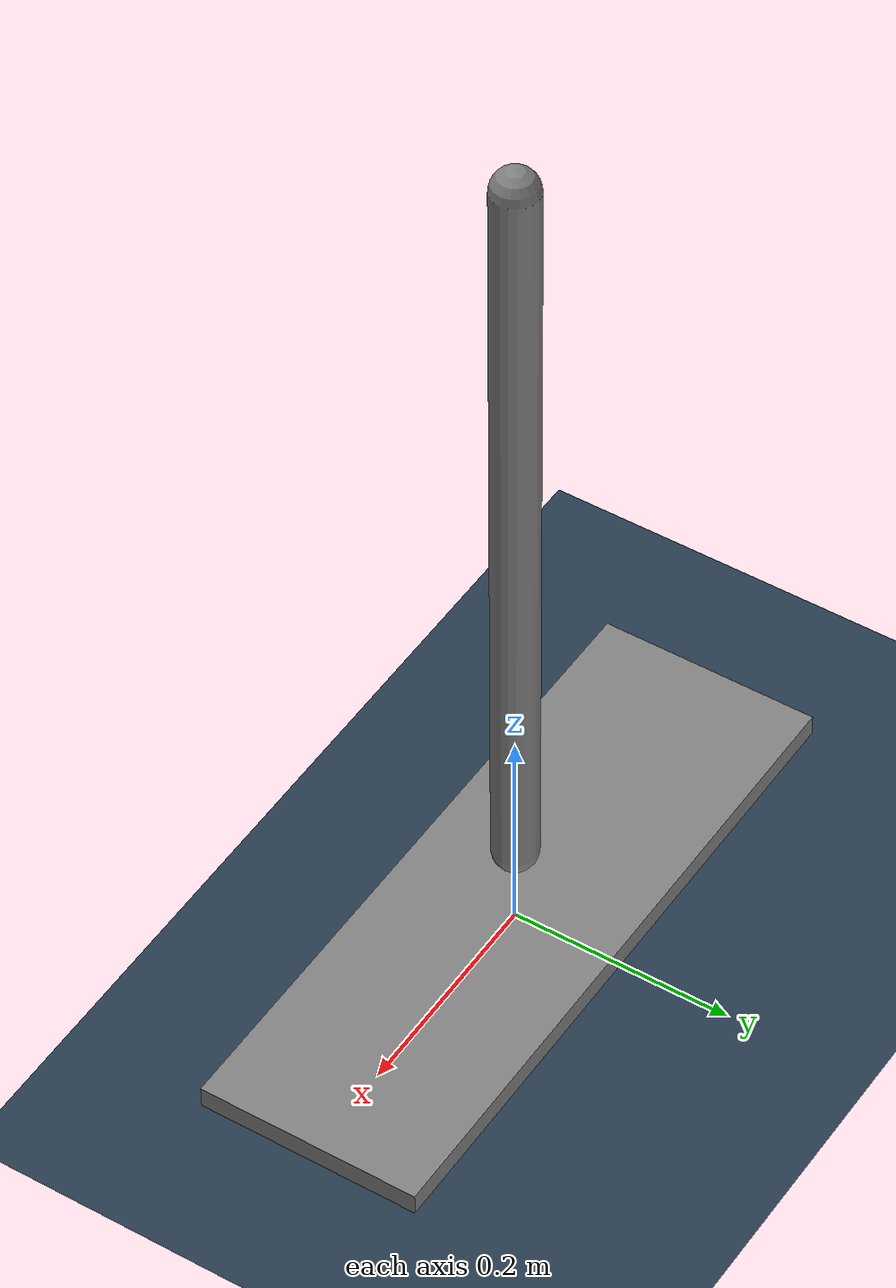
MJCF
<mujoco model="cartpole">

    <!-- set options for the built-in parser and compiler -->
    <compiler inertiafromgeom="auto" angle="radian"/>

    <!-- one-to-one correspondence with the low level structure mjOption contained in the field mjModel.opt of mjModel -->
    <option timestep="0.005" iterations="50" tolerance="1e-10" solver="Newton" jacobian="dense" cone="pyramidal"/>

    <!-- created in the model so that they can be referenced from other model elements -->
    <asset>
        <texture name="texplane" type="2d" builtin="checker" rgb1=".2 .3 .4" rgb2=".1 0.15 0.2" width="512" height="512" mark="cross" markrgb=".8 .8 .8"/>

        <material name="matplane" reflectance="0.3" texture="texplane" texrepeat="1 1" texuniform="true"/>
    </asset>

    <!-- construct the kinematic tree via nesting -->
    <worldbody>
        <light directional="false" diffuse=".2 .2 .2" specular="0 0 0" pos="0 0 5" dir="0 0 -1" castshadow="false"/>
        <geom name="floor" type="plane" pos="0 0 0" size="0 0 .25"  material="matplane" condim="3"/>

        <body name="cart" pos="0 0 0.01">
            <geom name="cart_geom" type="box" size="0.3 0.1 0.01" />
            <inertial pos='0 0 0' mass='1.0' diaginertia ='1.0 1.0 1.0'/>
            <joint name="cart_joint" type="slide" axis="1 0 0"/>

            <body name="pole" pos="0 0 0.42">
                <geom name="pole_geom" type="capsule" size="0.02 0.35" />
                <inertial pos='0 0 0' mass='1.0' diaginertia ='1.0 1.0 .1'/>
                <joint name="pole_joint" type="hinge" axis="0 1 0" pos="0 0  -0.4" />
            </body>
        </body>

    </worldbody>

    <!-- actuator definitions -->
    <actuator>
        <motor name="cart_motor" gear="10" joint="cart_joint" />
    </actuator>

</mujoco>
